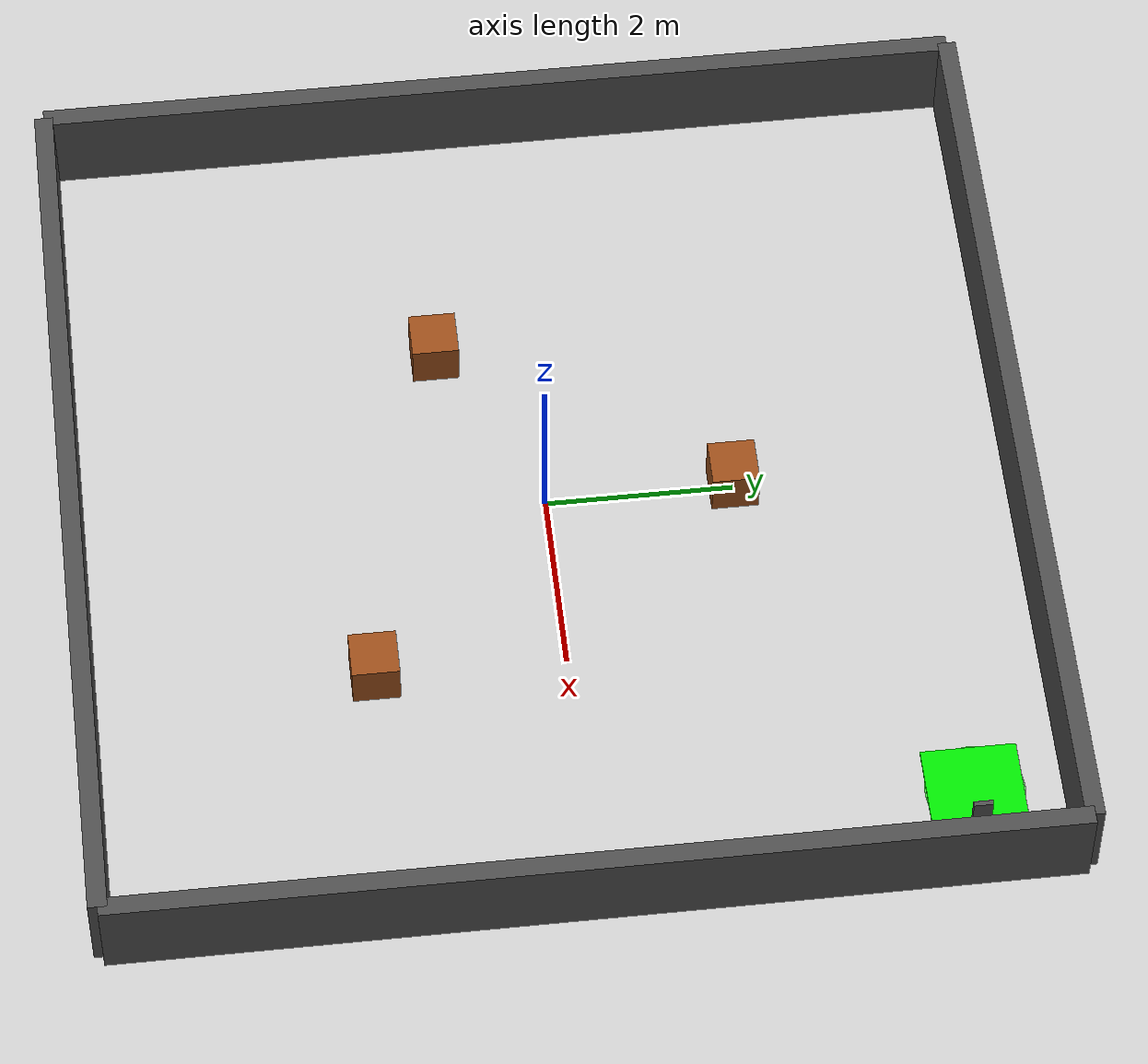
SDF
<sdf version="1.8">
 <world name="energy_world">
  <physics name="2ms" type="ignored">
   <max_step_size>0.002</max_step_size>
   <real_time_factor>0</real_time_factor>
   <real_time_update_rate>0</real_time_update_rate>
  </physics>
  <plugin filename="gz-sim-physics-system" name="gz::sim::systems::Physics"/>
  <plugin filename="gz-sim-user-commands-system" name="gz::sim::systems::UserCommands"/>
  <plugin filename="gz-sim-scene-broadcaster-system" name="gz::sim::systems::SceneBroadcaster"/>
  <plugin filename="gz-sim-sensors-system" name="gz::sim::systems::Sensors">
   <render_engine>ogre2</render_engine>
  </plugin>
  <plugin filename="gz-sim-imu-system" name="gz::sim::systems::Imu"/>
  <plugin filename="gz-sim-contact-system" name="gz::sim::systems::Contact"/>
  <light type="directional" name="sun">
   <pose>0 0 10 0 0 0</pose>
   <diffuse>0.8 0.8 0.8 1</diffuse>
   <specular>0.2 0.2 0.2 1</specular>
   <direction>-0.5 0.1 -0.9</direction>
  </light>
  <model name="ground_plane">
   <static>true</static>
   <link name="link">
    <collision name="collision">
     <geometry><plane><normal>0 0 1</normal><size>20 20</size></plane></geometry>
    </collision>
    <visual name="visual">
     <geometry><plane><normal>0 0 1</normal><size>20 20</size></plane></geometry>
     <material><ambient>0.8 0.8 0.8 1</ambient><diffuse>0.8 0.8 0.8 1</diffuse></material>
    </visual>
   </link>
  </model>
  <model name="wall_north">
   <static>true</static>
   <pose>0 5 0.5 0 0 0</pose>
   <link name="link">
    <collision name="collision"><geometry><box><size>10 0.2 1</size></box></geometry></collision>
    <visual name="visual">
     <geometry><box><size>10 0.2 1</size></box></geometry>
     <material><ambient>0.3 0.3 0.3 1</ambient><diffuse>0.3 0.3 0.3 1</diffuse></material>
    </visual>
   </link>
  </model>
  <model name="wall_south">
   <static>true</static>
   <pose>0 -5 0.5 0 0 0</pose>
   <link name="link">
    <collision name="collision"><geometry><box><size>10 0.2 1</size></box></geometry></collision>
    <visual name="visual">
     <geometry><box><size>10 0.2 1</size></box></geometry>
     <material><ambient>0.3 0.3 0.3 1</ambient><diffuse>0.3 0.3 0.3 1</diffuse></material>
    </visual>
   </link>
  </model>
  <model name="wall_east">
   <static>true</static>
   <pose>5 0 0.5 0 0 1.5708</pose>
   <link name="link">
    <collision name="collision"><geometry><box><size>10 0.2 1</size></box></geometry></collision>
    <visual name="visual">
     <geometry><box><size>10 0.2 1</size></box></geometry>
     <material><ambient>0.3 0.3 0.3 1</ambient><diffuse>0.3 0.3 0.3 1</diffuse></material>
    </visual>
   </link>
  </model>
  <model name="wall_west">
   <static>true</static>
   <pose>-5 0 0.5 0 0 1.5708</pose>
   <link name="link">
    <collision name="collision"><geometry><box><size>10 0.2 1</size></box></geometry></collision>
    <visual name="visual">
     <geometry><box><size>10 0.2 1</size></box></geometry>
     <material><ambient>0.3 0.3 0.3 1</ambient><diffuse>0.3 0.3 0.3 1</diffuse></material>
    </visual>
   </link>
  </model>
  <model name="charging_station">
   <static>true</static>
   <pose>4 4 0.01 0 0 0</pose>
   <link name="link">
    <visual name="visual">
     <geometry><box><size>1.0 1.0 0.02</size></box></geometry>
     <material><ambient>0.0 0.8 0.0 1</ambient><diffuse>0.0 0.9 0.0 1</diffuse></material>
    </visual>
   </link>
  </model>
  <model name="charging_post">
   <static>true</static>
   <pose>4.4 4 0.2 0 0 0</pose>
   <link name="link">
    <visual name="visual">
     <geometry><box><size>0.05 0.2 0.4</size></box></geometry>
     <material><ambient>0.2 0.2 0.2 1</ambient><diffuse>0.3 0.3 0.3 1</diffuse></material>
    </visual>
   </link>
  </model>
  <model name="charger_radius_ring">
   <static>true</static>
   <pose>4 4 0.005 0 0 0</pose>
   <link name="link">
    <visual name="outer">
     <geometry><cylinder><radius>0.52</radius><length>0.005</length></cylinder></geometry>
     <material><ambient>0.0 1.0 0.0 0.6</ambient><diffuse>0.0 1.0 0.0 0.6</diffuse></material>
    </visual>
    <visual name="inner">
     <pose>0 0 0.001 0 0 0</pose>
     <geometry><cylinder><radius>0.47</radius><length>0.006</length></cylinder></geometry>
     <material><ambient>0.9 0.9 0.9 1</ambient><diffuse>0.9 0.9 0.9 1</diffuse></material>
    </visual>
   </link>
  </model>
  <include>
   <uri>model://apriltag_0</uri>
   <name>charging_tag</name>
   <pose>4.35 4 0.28 0 1.5708 3.14159</pose>
  </include>
  <model name="obstacle1">
   <static>true</static>
   <pose>0 2 0.25 0 0 0</pose>
   <link name="link">
    <collision name="collision"><geometry><box><size>0.5 0.5 0.5</size></box></geometry></collision>
    <visual name="visual">
     <geometry><box><size>0.5 0.5 0.5</size></box></geometry>
     <material><ambient>0.6 0.3 0.1 1</ambient><diffuse>0.6 0.3 0.1 1</diffuse></material>
    </visual>
   </link>
  </model>
  <model name="obstacle2">
   <static>true</static>
   <pose>-2 -1 0.25 0 0 0</pose>
   <link name="link">
    <collision name="collision"><geometry><box><size>0.5 0.5 0.5</size></box></geometry></collision>
    <visual name="visual">
     <geometry><box><size>0.5 0.5 0.5</size></box></geometry>
     <material><ambient>0.6 0.3 0.1 1</ambient><diffuse>0.6 0.3 0.1 1</diffuse></material>
    </visual>
   </link>
  </model>
  <model name="obstacle3">
   <static>true</static>
   <pose>2 -2 0.25 0 0 0</pose>
   <link name="link">
    <collision name="collision"><geometry><box><size>0.5 0.5 0.5</size></box></geometry></collision>
    <visual name="visual">
     <geometry><box><size>0.5 0.5 0.5</size></box></geometry>
     <material><ambient>0.6 0.3 0.1 1</ambient><diffuse>0.6 0.3 0.1 1</diffuse></material>
    </visual>
   </link>
  </model>
 </world>
</sdf>

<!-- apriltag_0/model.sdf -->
<sdf version="1.9">
  <model name="apriltag_0">
    <static>true</static>
    <link name="link">
      <visual name="visual">
        <geometry>
          <box>
            <size>0.16 0.16 0.001</size>
          </box>
        </geometry>
        <material>
          <ambient>1.0 1.0 1.0 1</ambient>
          <diffuse>1.0 1.0 1.0 1</diffuse>
          <pbr>
            <metal>
              <albedo_map>materials/textures/tag36_11_00000.png</albedo_map>
              <metalness>0.0</metalness>
              <roughness>0.5</roughness>
            </metal>
          </pbr>
        </material>
      </visual>
      <collision name="collision">
        <geometry>
          <box>
            <size>0.16 0.16 0.001</size>
          </box>
        </geometry>
      </collision>
    </link>
  </model>
</sdf>
